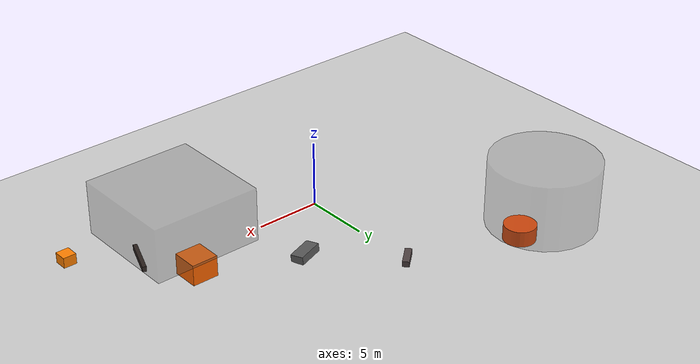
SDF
<sdf version="1.5">
 <world name="fire_rescue">
  <include><uri>model://sun</uri></include>
  <include><uri>model://ground_plane</uri></include>
  <physics name="default_physics" default="0" type="ode">
   <gravity>0 0 -9.8066</gravity>
   <max_step_size>0.004</max_step_size>
   <real_time_factor>1</real_time_factor>
   <real_time_update_rate>250</real_time_update_rate>
  </physics>
  <model name="fire_source_1">
   <static>true</static>
   <pose>12 2 0.8 0 0 0</pose>
   <link name="link">
    <visual name="fire">
     <geometry><box><size>2 2 1.6</size></box></geometry>
     <material><ambient>1 0.3 0 1</ambient><diffuse>1 0.4 0 1</diffuse><emissive>1 0.5 0 1</emissive></material>
    </visual>
   </link>
  </model>
  <model name="fire_glow_1">
   <static>true</static>
   <pose>12 2 2 0 0 0</pose>
   <link name="link">
    <visual name="glow">
     <geometry><box><size>1.5 1.5 1</size></box></geometry>
     <material>
      <ambient>1 0.6 0.1 0.8</ambient>
      <diffuse>1 0.7 0.2 0.8</diffuse>
      <emissive>1 0.8 0.3 1</emissive>
     </material>
    </visual>
   </link>
  </model>
  <model name="fire_source_2">
   <static>true</static>
   <pose>-8 13 0.6 0 0 0</pose>
   <link name="link">
    <visual name="fire">
     <geometry><cylinder><radius>1.2</radius><length>1.2</length></cylinder></geometry>
     <material><ambient>1 0.2 0 1</ambient><diffuse>1 0.3 0 1</diffuse><emissive>1 0.4 0 1</emissive></material>
    </visual>
   </link>
  </model>
  <model name="fire_glow_2">
   <static>true</static>
   <pose>-8 13 1.5 0 0 0</pose>
   <link name="link">
    <visual name="glow">
     <geometry><cylinder><radius>0.8</radius><length>0.8</length></cylinder></geometry>
     <material>
      <ambient>1 0.7 0.2 0.7</ambient>
      <diffuse>1 0.8 0.3 0.7</diffuse>
      <emissive>1 0.9 0.4 1</emissive>
     </material>
    </visual>
   </link>
  </model>
  <model name="fire_source_3">
   <static>true</static>
   <pose>18 -5 0.4 0 0 0</pose>
   <link name="link">
    <visual name="fire">
     <geometry><box><size>1 1 0.8</size></box></geometry>
     <material><ambient>1 0.4 0 1</ambient><diffuse>1 0.5 0 1</diffuse><emissive>1 0.6 0.1 1</emissive></material>
    </visual>
   </link>
  </model>
  <model name="smoke_area_1">
   <static>true</static>
   <pose>13 1 5 0 0 0</pose>
   <link name="link">
    <visual name="smoke">
     <geometry><box><size>8 8 4</size></box></geometry>
     <material><ambient>0.3 0.3 0.3 0.3</ambient><diffuse>0.4 0.4 0.4 0.3</diffuse></material>
    </visual>
   </link>
  </model>
  <model name="smoke_area_2">
   <static>true</static>
   <pose>-9 14 4 0 0 0</pose>
   <link name="link">
    <visual name="smoke">
     <geometry><cylinder><radius>4</radius><length>5</length></cylinder></geometry>
     <material><ambient>0.35 0.35 0.35 0.25</ambient><diffuse>0.4 0.4 0.4 0.25</diffuse></material>
    </visual>
   </link>
  </model>
  <model name="debris_1">
   <static>true</static>
   <pose>5 5 0.3 0.1 0.05 0.3</pose>
   <link name="link">
    <collision name="collision"><geometry><box><size>2 1 0.6</size></box></geometry></collision>
    <visual name="visual">
     <geometry><box><size>2 1 0.6</size></box></geometry>
     <material><ambient>0.3 0.3 0.3 1</ambient><diffuse>0.35 0.35 0.35 1</diffuse></material>
    </visual>
   </link>
  </model>
  <model name="debris_2">
   <static>true</static>
   <pose>0 10 0.25 0 0.1 0.7</pose>
   <link name="link">
    <collision name="collision"><geometry><box><size>1.5 0.5 0.5</size></box></geometry></collision>
    <visual name="visual">
     <geometry><box><size>1.5 0.5 0.5</size></box></geometry>
     <material><ambient>0.25 0.2 0.2 1</ambient><diffuse>0.3 0.25 0.25 1</diffuse></material>
    </visual>
   </link>
  </model>
  <model name="burned_wood">
   <static>true</static>
   <pose>14 -2 0.2 0 0 1.2</pose>
   <link name="link">
    <collision name="collision"><geometry><box><size>3 0.3 0.4</size></box></geometry></collision>
    <visual name="visual">
     <geometry><box><size>3 0.3 0.4</size></box></geometry>
     <material><ambient>0.1 0.08 0.05 1</ambient><diffuse>0.15 0.1 0.08 1</diffuse></material>
    </visual>
   </link>
  </model>
 </world>
</sdf>
